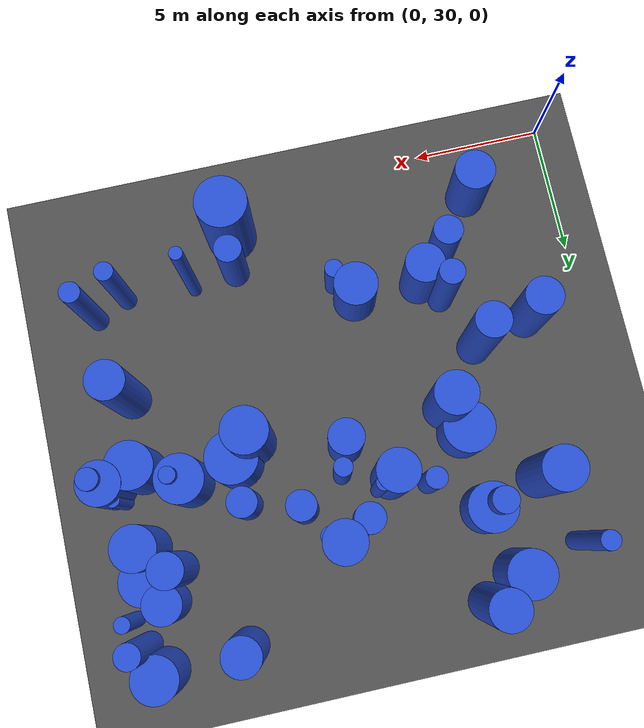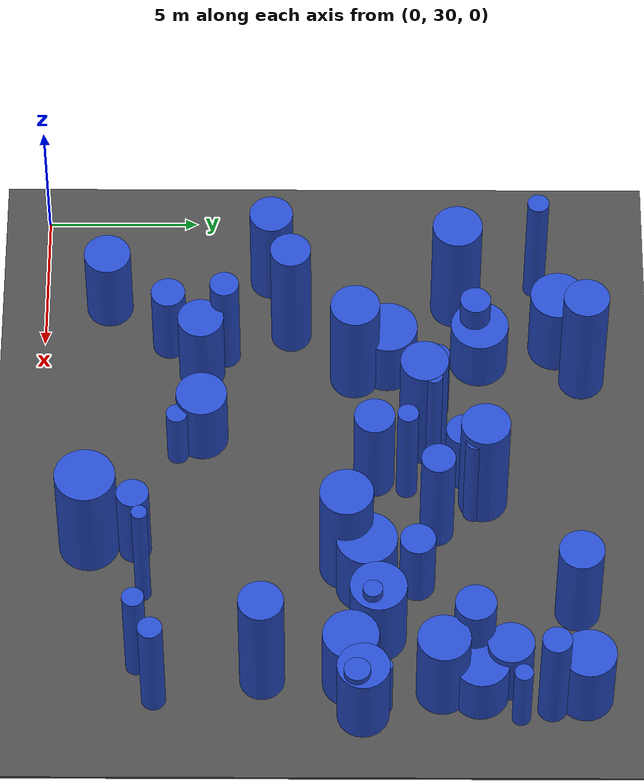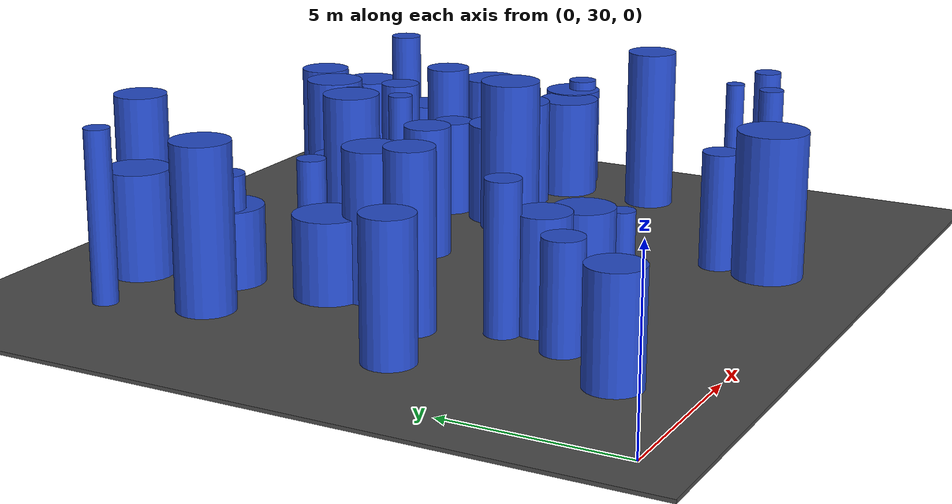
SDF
<sdf version="1.6">
 <world name="default">
  <model name="ground_plane">
   <static>1</static>
   <link name="link">
    <collision name="collision">
     <geometry><plane><normal>0 0 1</normal><size>100 100</size></plane></geometry>
     <surface><friction><ode><mu>100</mu><mu2>50</mu2></ode></friction></surface>
    </collision>
    <visual name="visual">
     <cast_shadows>0</cast_shadows>
     <geometry><plane><normal>0 0 1</normal><size>100 100</size></plane></geometry>
     <material>
      <script><uri>file://media/materials/scripts/gazebo.material</uri><name>Gazebo/Grey</name></script>
     </material>
    </visual>
   </link>
  </model>
  <model name="asphalt_plane">
   <static>1</static>
   <link name="link">
    <collision name="collision"><geometry><box><size>200 200 0.1</size></box></geometry></collision>
    <visual name="visual">
     <cast_shadows>0</cast_shadows>
     <geometry><box><size>200 200 0.1</size></box></geometry>
     <material>
      <script>
       <uri>model://asphalt_plane/materials/scripts</uri>
       <uri>model://asphalt_plane/materials/textures</uri>
       <name>vrc/asphalt</name>
      </script>
     </material>
    </visual>
   </link>
  </model>
  <model name="1">
   <static>0</static>
   <link name="link">
    <inertial>
     <mass>2</mass>
     <inertia><ixx>1.7057</ixx><ixy>0</ixy><ixz>0</ixz><iyy>1.7057</iyy><iyz>0</iyz><izz>0.32089</izz></inertia>
    </inertial>
    <collision name="collision">
     <geometry><cylinder><length>3.04492</length><radius>0.566472</radius></cylinder></geometry>
     <surface><contact><collide_without_contact>1</collide_without_contact></contact></surface>
    </collision>
    <visual name="visual">
     <geometry><cylinder><length>3.04492</length><radius>0.566472</radius></cylinder></geometry>
     <material>
      <script><uri>file://media/materials/scripts/gazebo.material</uri><name>Gazebo/Blue</name></script>
     </material>
    </visual>
    <gravity>0</gravity>
   </link>
   <pose>5.05368 34.1911 1.52246 0 -0 0</pose>
  </model>
  <model name="2">
   <static>0</static>
   <link name="link">
    <inertial>
     <mass>2</mass>
     <inertia><ixx>2.62741</ixx><ixy>0</ixy><ixz>0</ixz><iyy>2.62741</iyy><iyz>0</iyz><izz>0.536153</izz></inertia>
    </inertial>
    <collision name="collision">
     <geometry><cylinder><length>3.76245</length><radius>0.732225</radius></cylinder></geometry>
     <surface><contact><collide_without_contact>1</collide_without_contact></contact></surface>
    </collision>
    <visual name="visual">
     <geometry><cylinder><length>3.76245</length><radius>0.732225</radius></cylinder></geometry>
     <material>
      <script><uri>file://media/materials/scripts/gazebo.material</uri><name>Gazebo/Blue</name></script>
     </material>
    </visual>
    <gravity>0</gravity>
   </link>
   <pose>15.603 47.5677 1.88122 0 -0 0</pose>
  </model>
  <model name="3">
   <static>0</static>
   <link name="link">
    <inertial>
     <mass>2</mass>
     <inertia>
      <ixx>1.36545</ixx>
      <ixy>0</ixy>
      <ixz>0</ixz>
      <iyy>1.36545</iyy>
      <iyz>0</iyz>
      <izz>0.0913502</izz>
     </inertia>
    </inertial>
    <collision name="collision">
     <geometry><cylinder><length>2.81401</length><radius>0.302242</radius></cylinder></geometry>
     <surface><contact><collide_without_contact>1</collide_without_contact></contact></surface>
    </collision>
    <visual name="visual">
     <geometry><cylinder><length>2.81401</length><radius>0.302242</radius></cylinder></geometry>
     <material>
      <script><uri>file://media/materials/scripts/gazebo.material</uri><name>Gazebo/Blue</name></script>
     </material>
    </visual>
    <gravity>0</gravity>
   </link>
   <pose>19.5801 45.6834 1.40701 0 -0 0</pose>
  </model>
  <model name="4">
   <static>0</static>
   <link name="link">
    <inertial>
     <mass>2</mass>
     <inertia><ixx>1.95961</ixx><ixy>0</ixy><ixz>0</ixz><iyy>1.95961</iyy><iyz>0</iyz><izz>0.982624</izz></inertia>
    </inertial>
    <collision name="collision">
     <geometry><cylinder><length>2.96813</length><radius>0.991274</radius></cylinder></geometry>
     <surface><contact><collide_without_contact>1</collide_without_contact></contact></surface>
    </collision>
    <visual name="visual">
     <geometry><cylinder><length>2.96813</length><radius>0.991274</radius></cylinder></geometry>
     <material>
      <script><uri>file://media/materials/scripts/gazebo.material</uri><name>Gazebo/Blue</name></script>
     </material>
    </visual>
    <gravity>0</gravity>
   </link>
   <pose>14.6645 40.756 1.48407 0 -0 0</pose>
  </model>
  <model name="5">
   <static>0</static>
   <link name="link">
    <inertial>
     <mass>2</mass>
     <inertia><ixx>2.61652</ixx><ixy>0</ixy><ixz>0</ixz><iyy>2.61652</iyy><iyz>0</iyz><izz>0.44531</izz></inertia>
    </inertial>
    <collision name="collision">
     <geometry><cylinder><length>3.78988</length><radius>0.667315</radius></cylinder></geometry>
     <surface><contact><collide_without_contact>1</collide_without_contact></contact></surface>
    </collision>
    <visual name="visual">
     <geometry><cylinder><length>3.78988</length><radius>0.667315</radius></cylinder></geometry>
     <material>
      <script><uri>file://media/materials/scripts/gazebo.material</uri><name>Gazebo/Blue</name></script>
     </material>
    </visual>
    <gravity>0</gravity>
   </link>
   <pose>10.4927 41.0038 1.89494 0 -0 0</pose>
  </model>
  <model name="6">
   <static>0</static>
   <link name="link">
    <inertial>
     <mass>2</mass>
     <inertia><ixx>2.11932</ixx><ixy>0</ixy><ixz>0</ixz><iyy>2.11932</iyy><iyz>0</iyz><izz>0.84148</izz></inertia>
    </inertial>
    <collision name="collision">
     <geometry><cylinder><length>3.19241</length><radius>0.917322</radius></cylinder></geometry>
     <surface><contact><collide_without_contact>1</collide_without_contact></contact></surface>
    </collision>
    <visual name="visual">
     <geometry><cylinder><length>3.19241</length><radius>0.917322</radius></cylinder></geometry>
     <material>
      <script><uri>file://media/materials/scripts/gazebo.material</uri><name>Gazebo/Blue</name></script>
     </material>
    </visual>
    <gravity>0</gravity>
   </link>
   <pose>16.6156 41.1221 1.5962 0 -0 0</pose>
  </model>
  <model name="8">
   <static>0</static>
   <link name="link">
    <inertial>
     <mass>2</mass>
     <inertia><ixx>3.79155</ixx><ixy>0</ixy><ixz>0</ixz><iyy>3.79155</iyy><iyz>0</iyz><izz>0.640544</izz></inertia>
    </inertial>
    <collision name="collision">
     <geometry><cylinder><length>4.56373</length><radius>0.80034</radius></cylinder></geometry>
     <surface><contact><collide_without_contact>1</collide_without_contact></contact></surface>
    </collision>
    <visual name="visual">
     <geometry><cylinder><length>4.56373</length><radius>0.80034</radius></cylinder></geometry>
     <material>
      <script><uri>file://media/materials/scripts/gazebo.material</uri><name>Gazebo/Blue</name></script>
     </material>
    </visual>
    <gravity>0</gravity>
   </link>
   <pose>11.3326 44.5695 2.28187 0 -0 0</pose>
  </model>
  <model name="25">
   <static>0</static>
   <link name="link">
    <inertial>
     <mass>2</mass>
     <inertia><ixx>1.19215</ixx><ixy>0</ixy><ixz>0</ixz><iyy>1.19215</iyy><iyz>0</iyz><izz>0.566845</izz></inertia>
    </inertial>
    <collision name="collision">
     <geometry><cylinder><length>2.33503</length><radius>0.752891</radius></cylinder></geometry>
     <surface><contact><collide_without_contact>1</collide_without_contact></contact></surface>
    </collision>
    <visual name="visual">
     <geometry><cylinder><length>2.33503</length><radius>0.752891</radius></cylinder></geometry>
     <material>
      <script><uri>file://media/materials/scripts/gazebo.material</uri><name>Gazebo/Blue</name></script>
     </material>
    </visual>
    <gravity>0</gravity>
   </link>
   <pose>18.1857 45.3246 1.16752 0 -0 0</pose>
  </model>
  <model name="26">
   <static>0</static>
   <link name="link">
    <inertial>
     <mass>2</mass>
     <inertia><ixx>1.12247</ixx><ixy>0</ixy><ixz>0</ixz><iyy>1.12247</iyy><iyz>0</iyz><izz>0.817696</izz></inertia>
    </inertial>
    <collision name="collision">
     <geometry><cylinder><length>2.06923</length><radius>0.904265</radius></cylinder></geometry>
     <surface><contact><collide_without_contact>1</collide_without_contact></contact></surface>
    </collision>
    <visual name="visual">
     <geometry><cylinder><length>2.06923</length><radius>0.904265</radius></cylinder></geometry>
     <material>
      <script><uri>file://media/materials/scripts/gazebo.material</uri><name>Gazebo/Blue</name></script>
     </material>
    </visual>
    <gravity>0</gravity>
   </link>
   <pose>18.7542 44.3924 1.03462 0 -0 0</pose>
  </model>
  <model name="27">
   <static>0</static>
   <link name="link">
    <inertial>
     <mass>2</mass>
     <inertia><ixx>2.96729</ixx><ixy>0</ixy><ixz>0</ixz><iyy>2.96729</iyy><iyz>0</iyz><izz>0.127909</izz></inertia>
    </inertial>
    <collision name="collision">
     <geometry><cylinder><length>4.17373</length><radius>0.357643</radius></cylinder></geometry>
     <surface><contact><collide_without_contact>1</collide_without_contact></contact></surface>
    </collision>
    <visual name="visual">
     <geometry><cylinder><length>4.17373</length><radius>0.357643</radius></cylinder></geometry>
     <material>
      <script><uri>file://media/materials/scripts/gazebo.material</uri><name>Gazebo/Blue</name></script>
     </material>
    </visual>
    <gravity>0</gravity>
   </link>
   <pose>17.6873 33.3868 2.08686 0 -0 0</pose>
  </model>
  <model name="38">
   <static>0</static>
   <link name="link">
    <inertial>
     <mass>2</mass>
     <inertia><ixx>4.19414</ixx><ixy>0</ixy><ixz>0</ixz><iyy>4.19414</iyy><iyz>0</iyz><izz>0.44377</izz></inertia>
    </inertial>
    <collision name="collision">
     <geometry><cylinder><length>4.88196</length><radius>0.66616</radius></cylinder></geometry>
     <surface><contact><collide_without_contact>1</collide_without_contact></contact></surface>
    </collision>
    <visual name="visual">
     <geometry><cylinder><length>4.88196</length><radius>0.66616</radius></cylinder></geometry>
     <material>
      <script><uri>file://media/materials/scripts/gazebo.material</uri><name>Gazebo/Blue</name></script>
     </material>
    </visual>
    <gravity>0</gravity>
   </link>
   <pose>4.65444 38.2486 2.44098 0 -0 0</pose>
  </model>
  <model name="48">
   <static>0</static>
   <link name="link">
    <inertial>
     <mass>2</mass>
     <inertia><ixx>1.82802</ixx><ixy>0</ixy><ixz>0</ixz><iyy>1.82802</iyy><iyz>0</iyz><izz>0.254102</izz></inertia>
    </inertial>
    <collision name="collision">
     <geometry><cylinder><length>3.19465</length><radius>0.504085</radius></cylinder></geometry>
     <surface><contact><collide_without_contact>1</collide_without_contact></contact></surface>
    </collision>
    <visual name="visual">
     <geometry><cylinder><length>3.19465</length><radius>0.504085</radius></cylinder></geometry>
     <material>
      <script><uri>file://media/materials/scripts/gazebo.material</uri><name>Gazebo/Blue</name></script>
     </material>
    </visual>
    <gravity>0</gravity>
   </link>
   <pose>5.44202 44.3514 1.59733 0 -0 0</pose>
  </model>
  <model name="50">
   <static>0</static>
   <link name="link">
    <inertial>
     <mass>2</mass>
     <inertia><ixx>3.72286</ixx><ixy>0</ixy><ixz>0</ixz><iyy>3.72286</iyy><iyz>0</iyz><izz>0.752278</izz></inertia>
    </inertial>
    <collision name="collision">
     <geometry><cylinder><length>4.4811</length><radius>0.86734</radius></cylinder></geometry>
     <surface><contact><collide_without_contact>1</collide_without_contact></contact></surface>
    </collision>
    <visual name="visual">
     <geometry><cylinder><length>4.4811</length><radius>0.86734</radius></cylinder></geometry>
     <material>
      <script><uri>file://media/materials/scripts/gazebo.material</uri><name>Gazebo/Blue</name></script>
     </material>
    </visual>
    <gravity>0</gravity>
   </link>
   <pose>13.9115 40.0974 2.24055 0 -0 0</pose>
  </model>
  <model name="61">
   <static>0</static>
   <link name="link">
    <inertial>
     <mass>2</mass>
     <inertia>
      <ixx>4.01912</ixx>
      <ixy>0</ixy>
      <ixz>0</ixz>
      <iyy>4.01912</iyy>
      <iyz>0</iyz>
      <izz>0.0645632</izz>
     </inertia>
    </inertial>
    <collision name="collision">
     <geometry><cylinder><length>4.89091</length><radius>0.254093</radius></cylinder></geometry>
     <surface><contact><collide_without_contact>1</collide_without_contact></contact></surface>
    </collision>
    <visual name="visual">
     <geometry><cylinder><length>4.89091</length><radius>0.254093</radius></cylinder></geometry>
     <material>
      <script><uri>file://media/materials/scripts/gazebo.material</uri><name>Gazebo/Blue</name></script>
     </material>
    </visual>
    <gravity>0</gravity>
   </link>
   <pose>14.9692 33.5353 2.44546 0 -0 0</pose>
  </model>
  <model name="63">
   <static>0</static>
   <link name="link">
    <inertial>
     <mass>2</mass>
     <inertia><ixx>1.90981</ixx><ixy>0</ixy><ixz>0</ixz><iyy>1.90981</iyy><iyz>0</iyz><izz>0.596313</izz></inertia>
    </inertial>
    <collision name="collision">
     <geometry><cylinder><length>3.10965</length><radius>0.772213</radius></cylinder></geometry>
     <surface><contact><collide_without_contact>1</collide_without_contact></contact></surface>
    </collision>
    <visual name="visual">
     <geometry><cylinder><length>3.10965</length><radius>0.772213</radius></cylinder></geometry>
     <material>
      <script><uri>file://media/materials/scripts/gazebo.material</uri><name>Gazebo/Blue</name></script>
     </material>
    </visual>
    <gravity>0</gravity>
   </link>
   <pose>3.52675 32.1403 1.55483 0 -0 0</pose>
  </model>
  <model name="75">
   <static>0</static>
   <link name="link">
    <inertial>
     <mass>2</mass>
     <inertia><ixx>2.73538</ixx><ixy>0</ixy><ixz>0</ixz><iyy>2.73538</iyy><iyz>0</iyz><izz>0.514926</izz></inertia>
    </inertial>
    <collision name="collision">
     <geometry><cylinder><length>3.85584</length><radius>0.717584</radius></cylinder></geometry>
     <surface><contact><collide_without_contact>1</collide_without_contact></contact></surface>
    </collision>
    <visual name="visual">
     <geometry><cylinder><length>3.85584</length><radius>0.717584</radius></cylinder></geometry>
     <material>
      <script><uri>file://media/materials/scripts/gazebo.material</uri><name>Gazebo/Blue</name></script>
     </material>
    </visual>
    <gravity>0</gravity>
   </link>
   <pose>2.41334 37.5859 1.92792 0 -0 0</pose>
  </model>
  <model name="90">
   <static>0</static>
   <link name="link">
    <inertial>
     <mass>2</mass>
     <inertia><ixx>3.38084</ixx><ixy>0</ixy><ixz>0</ixz><iyy>3.38084</iyy><iyz>0</iyz><izz>0.117593</izz></inertia>
    </inertial>
    <collision name="collision">
     <geometry><cylinder><length>4.46456</length><radius>0.342918</radius></cylinder></geometry>
     <surface><contact><collide_without_contact>1</collide_without_contact></contact></surface>
    </collision>
    <visual name="visual">
     <geometry><cylinder><length>4.46456</length><radius>0.342918</radius></cylinder></geometry>
     <material>
      <script><uri>file://media/materials/scripts/gazebo.material</uri><name>Gazebo/Blue</name></script>
     </material>
    </visual>
    <gravity>0</gravity>
   </link>
   <pose>10.8516 42.0753 2.23228 0 -0 0</pose>
  </model>
  <model name="93">
   <static>0</static>
   <link name="link">
    <inertial>
     <mass>2</mass>
     <inertia><ixx>2.00699</ixx><ixy>0</ixy><ixz>0</ixz><iyy>2.00699</iyy><iyz>0</iyz><izz>0.571679</izz></inertia>
    </inertial>
    <collision name="collision">
     <geometry><cylinder><length>3.21355</length><radius>0.756095</radius></cylinder></geometry>
     <surface><contact><collide_without_contact>1</collide_without_contact></contact></surface>
    </collision>
    <visual name="visual">
     <geometry><cylinder><length>3.21355</length><radius>0.756095</radius></cylinder></geometry>
     <material>
      <script><uri>file://media/materials/scripts/gazebo.material</uri><name>Gazebo/Blue</name></script>
     </material>
    </visual>
    <gravity>0</gravity>
   </link>
   <pose>6.21176 35.2915 1.60678 0 -0 0</pose>
  </model>
  <model name="99">
   <static>0</static>
   <link name="link">
    <inertial>
     <mass>2</mass>
     <inertia><ixx>3.91172</ixx><ixy>0</ixy><ixz>0</ixz><iyy>3.91172</iyy><iyz>0</iyz><izz>0.672515</izz></inertia>
    </inertial>
    <collision name="collision">
     <geometry><cylinder><length>4.63171</length><radius>0.82007</radius></cylinder></geometry>
     <surface><contact><collide_without_contact>1</collide_without_contact></contact></surface>
    </collision>
    <visual name="visual">
     <geometry><cylinder><length>4.63171</length><radius>0.82007</radius></cylinder></geometry>
     <material>
      <script><uri>file://media/materials/scripts/gazebo.material</uri><name>Gazebo/Blue</name></script>
     </material>
    </visual>
    <gravity>0</gravity>
   </link>
   <pose>3.48026 43.7493 2.31586 0 -0 0</pose>
  </model>
  <model name="104">
   <static>0</static>
   <link name="link">
    <inertial>
     <mass>2</mass>
     <inertia><ixx>1.92082</ixx><ixy>0</ixy><ixz>0</ixz><iyy>1.92082</iyy><iyz>0</iyz><izz>0.825903</izz></inertia>
    </inertial>
    <collision name="collision">
     <geometry><cylinder><length>3.00786</length><radius>0.908792</radius></cylinder></geometry>
     <surface><contact><collide_without_contact>1</collide_without_contact></contact></surface>
    </collision>
    <visual name="visual">
     <geometry><cylinder><length>3.00786</length><radius>0.908792</radius></cylinder></geometry>
     <material>
      <script><uri>file://media/materials/scripts/gazebo.material</uri><name>Gazebo/Blue</name></script>
     </material>
    </visual>
    <gravity>0</gravity>
   </link>
   <pose>18.3119 40.2452 1.50393 0 -0 0</pose>
  </model>
  <model name="108">
   <static>0</static>
   <link name="link">
    <inertial>
     <mass>2</mass>
     <inertia><ixx>1.39367</ixx><ixy>0</ixy><ixz>0</ixz><iyy>1.39367</iyy><iyz>0</iyz><izz>0.956084</izz></inertia>
    </inertial>
    <collision name="collision">
     <geometry><cylinder><length>2.34388</length><radius>0.977795</radius></cylinder></geometry>
     <surface><contact><collide_without_contact>1</collide_without_contact></contact></surface>
    </collision>
    <visual name="visual">
     <geometry><cylinder><length>2.34388</length><radius>0.977795</radius></cylinder></geometry>
     <material>
      <script><uri>file://media/materials/scripts/gazebo.material</uri><name>Gazebo/Blue</name></script>
     </material>
    </visual>
    <gravity>0</gravity>
   </link>
   <pose>5.9367 41.4672 1.17194 0 -0 0</pose>
  </model>
  <model name="114">
   <static>0</static>
   <link name="link">
    <inertial>
     <mass>2</mass>
     <inertia><ixx>1.52905</ixx><ixy>0</ixy><ixz>0</ixz><iyy>1.52905</iyy><iyz>0</iyz><izz>0.330127</izz></inertia>
    </inertial>
    <collision name="collision">
     <geometry><cylinder><length>2.86076</length><radius>0.574567</radius></cylinder></geometry>
     <surface><contact><collide_without_contact>1</collide_without_contact></contact></surface>
    </collision>
    <visual name="visual">
     <geometry><cylinder><length>2.86076</length><radius>0.574567</radius></cylinder></geometry>
     <material>
      <script><uri>file://media/materials/scripts/gazebo.material</uri><name>Gazebo/Blue</name></script>
     </material>
    </visual>
    <gravity>0</gravity>
   </link>
   <pose>14.6221 42.3954 1.43038 0 -0 0</pose>
  </model>
  <model name="115">
   <static>0</static>
   <link name="link">
    <inertial>
     <mass>2</mass>
     <inertia><ixx>1.65039</ixx><ixy>0</ixy><ixz>0</ixz><iyy>1.65039</iyy><iyz>0</iyz><izz>0.773236</izz></inertia>
    </inertial>
    <collision name="collision">
     <geometry><cylinder><length>2.75365</length><radius>0.879338</radius></cylinder></geometry>
     <surface><contact><collide_without_contact>1</collide_without_contact></contact></surface>
    </collision>
    <visual name="visual">
     <geometry><cylinder><length>2.75365</length><radius>0.879338</radius></cylinder></geometry>
     <material>
      <script><uri>file://media/materials/scripts/gazebo.material</uri><name>Gazebo/Blue</name></script>
     </material>
    </visual>
    <gravity>0</gravity>
   </link>
   <pose>18.8288 47.7637 1.37683 0 -0 0</pose>
  </model>
  <model name="117">
   <static>0</static>
   <link name="link">
    <inertial>
     <mass>2</mass>
     <inertia><ixx>3.9347</ixx><ixy>0</ixy><ixz>0</ixz><iyy>3.9347</iyy><iyz>0</iyz><izz>0.126221</izz></inertia>
    </inertial>
    <collision name="collision">
     <geometry><cylinder><length>4.8197</length><radius>0.355276</radius></cylinder></geometry>
     <surface><contact><collide_without_contact>1</collide_without_contact></contact></surface>
    </collision>
    <visual name="visual">
     <geometry><cylinder><length>4.8197</length><radius>0.355276</radius></cylinder></geometry>
     <material>
      <script><uri>file://media/materials/scripts/gazebo.material</uri><name>Gazebo/Blue</name></script>
     </material>
    </visual>
    <gravity>0</gravity>
   </link>
   <pose>2.66707 46.4198 2.40985 0 -0 0</pose>
  </model>
  <model name="118">
   <static>0</static>
   <link name="link">
    <inertial>
     <mass>2</mass>
     <inertia><ixx>4.07264</ixx><ixy>0</ixy><ixz>0</ixz><iyy>4.07264</iyy><iyz>0</iyz><izz>0.562164</izz></inertia>
    </inertial>
    <collision name="collision">
     <geometry><cylinder><length>4.76963</length><radius>0.749776</radius></cylinder></geometry>
     <surface><contact><collide_without_contact>1</collide_without_contact></contact></surface>
    </collision>
    <visual name="visual">
     <geometry><cylinder><length>4.76963</length><radius>0.749776</radius></cylinder></geometry>
     <material>
      <script><uri>file://media/materials/scripts/gazebo.material</uri><name>Gazebo/Blue</name></script>
     </material>
    </visual>
    <gravity>0</gravity>
   </link>
   <pose>6.48071 47.9206 2.38481 0 -0 0</pose>
  </model>
  <model name="123">
   <static>0</static>
   <link name="link">
    <inertial>
     <mass>2</mass>
     <inertia>
      <ixx>2.14543</ixx>
      <ixy>0</ixy>
      <ixz>0</ixz>
      <iyy>2.14543</iyy>
      <iyz>0</iyz>
      <izz>0.0998693</izz>
     </inertia>
    </inertial>
    <collision name="collision">
     <geometry><cylinder><length>3.54584</length><radius>0.316021</radius></cylinder></geometry>
     <surface><contact><collide_without_contact>1</collide_without_contact></contact></surface>
    </collision>
    <visual name="visual">
     <geometry><cylinder><length>3.54584</length><radius>0.316021</radius></cylinder></geometry>
     <material>
      <script><uri>file://media/materials/scripts/gazebo.material</uri><name>Gazebo/Blue</name></script>
     </material>
    </visual>
    <gravity>0</gravity>
   </link>
   <pose>16.9404 40.9377 1.77292 0 -0 0</pose>
  </model>
  <model name="125">
   <static>0</static>
   <link name="link">
    <inertial>
     <mass>2</mass>
     <inertia><ixx>2.1948</ixx><ixy>0</ixy><ixz>0</ixz><iyy>2.1948</iyy><iyz>0</iyz><izz>0.726981</izz></inertia>
    </inertial>
    <collision name="collision">
     <geometry><cylinder><length>3.31479</length><radius>0.852632</radius></cylinder></geometry>
     <surface><contact><collide_without_contact>1</collide_without_contact></contact></surface>
    </collision>
    <visual name="visual">
     <geometry><cylinder><length>3.31479</length><radius>0.852632</radius></cylinder></geometry>
     <material>
      <script><uri>file://media/materials/scripts/gazebo.material</uri><name>Gazebo/Blue</name></script>
     </material>
    </visual>
    <gravity>0</gravity>
   </link>
   <pose>18.6277 43.1827 1.65739 0 -0 0</pose>
  </model>
  <model name="129">
   <static>0</static>
   <link name="link">
    <inertial>
     <mass>2</mass>
     <inertia>
      <ixx>3.89529</ixx>
      <ixy>0</ixy>
      <ixz>0</ixz>
      <iyy>3.89529</iyy>
      <iyz>0</iyz>
      <izz>0.0825572</izz>
     </inertia>
    </inertial>
    <collision name="collision">
     <geometry><cylinder><length>4.80875</length><radius>0.287328</radius></cylinder></geometry>
     <surface><contact><collide_without_contact>1</collide_without_contact></contact></surface>
    </collision>
    <visual name="visual">
     <geometry><cylinder><length>4.80875</length><radius>0.287328</radius></cylinder></geometry>
     <material>
      <script><uri>file://media/materials/scripts/gazebo.material</uri><name>Gazebo/Blue</name></script>
     </material>
    </visual>
    <gravity>0</gravity>
   </link>
   <pose>9.62037 42.9112 2.40438 0 -0 0</pose>
  </model>
  <model name="130">
   <static>0</static>
   <link name="link">
    <inertial>
     <mass>2</mass>
     <inertia><ixx>3.39599</ixx><ixy>0</ixy><ixz>0</ixz><iyy>3.39599</iyy><iyz>0</iyz><izz>0.973982</izz></inertia>
    </inertial>
    <collision name="collision">
     <geometry><cylinder><length>4.1778</length><radius>0.986905</radius></cylinder></geometry>
     <surface><contact><collide_without_contact>1</collide_without_contact></contact></surface>
    </collision>
    <visual name="visual">
     <geometry><cylinder><length>4.1778</length><radius>0.986905</radius></cylinder></geometry>
     <material>
      <script><uri>file://media/materials/scripts/gazebo.material</uri><name>Gazebo/Blue</name></script>
     </material>
    </visual>
    <gravity>0</gravity>
   </link>
   <pose>13.0958 31.7293 2.0889 0 -0 0</pose>
  </model>
  <model name="132">
   <static>0</static>
   <link name="link">
    <inertial>
     <mass>2</mass>
     <inertia><ixx>3.33853</ixx><ixy>0</ixy><ixz>0</ixz><iyy>3.33853</iyy><iyz>0</iyz><izz>0.305697</izz></inertia>
    </inertial>
    <collision name="collision">
     <geometry><cylinder><length>4.37196</length><radius>0.552899</radius></cylinder></geometry>
     <surface><contact><collide_without_contact>1</collide_without_contact></contact></surface>
    </collision>
    <visual name="visual">
     <geometry><cylinder><length>4.37196</length><radius>0.552899</radius></cylinder></geometry>
     <material>
      <script><uri>file://media/materials/scripts/gazebo.material</uri><name>Gazebo/Blue</name></script>
     </material>
    </visual>
    <gravity>0</gravity>
   </link>
   <pose>12.5302 43.0419 2.18598 0 -0 0</pose>
  </model>
  <model name="136">
   <static>0</static>
   <link name="link">
    <inertial>
     <mass>2</mass>
     <inertia><ixx>1.51332</ixx><ixy>0</ixy><ixz>0</ixz><iyy>1.51332</iyy><iyz>0</iyz><izz>0.707687</izz></inertia>
    </inertial>
    <collision name="collision">
     <geometry><cylinder><length>2.63759</length><radius>0.841241</radius></cylinder></geometry>
     <surface><contact><collide_without_contact>1</collide_without_contact></contact></surface>
    </collision>
    <visual name="visual">
     <geometry><cylinder><length>2.63759</length><radius>0.841241</radius></cylinder></geometry>
     <material>
      <script><uri>file://media/materials/scripts/gazebo.material</uri><name>Gazebo/Blue</name></script>
     </material>
    </visual>
    <gravity>0</gravity>
   </link>
   <pose>8.84388 35.3527 1.31879 0 -0 0</pose>
  </model>
  <model name="139">
   <static>0</static>
   <link name="link">
    <inertial>
     <mass>2</mass>
     <inertia><ixx>2.02174</ixx><ixy>0</ixy><ixz>0</ixz><iyy>2.02174</iyy><iyz>0</iyz><izz>0.279239</izz></inertia>
    </inertial>
    <collision name="collision">
     <geometry><cylinder><length>3.36046</length><radius>0.528431</radius></cylinder></geometry>
     <surface><contact><collide_without_contact>1</collide_without_contact></contact></surface>
    </collision>
    <visual name="visual">
     <geometry><cylinder><length>3.36046</length><radius>0.528431</radius></cylinder></geometry>
     <material>
      <script><uri>file://media/materials/scripts/gazebo.material</uri><name>Gazebo/Blue</name></script>
     </material>
    </visual>
    <gravity>0</gravity>
   </link>
   <pose>13.2306 33.2333 1.68023 0 -0 0</pose>
  </model>
  <model name="141">
   <static>0</static>
   <link name="link">
    <inertial>
     <mass>2</mass>
     <inertia>
      <ixx>1.62132</ixx>
      <ixy>0</ixy>
      <ixz>0</ixz>
      <iyy>1.62132</iyy>
      <iyz>0</iyz>
      <izz>0.0885588</izz>
     </inertia>
    </inertial>
    <collision name="collision">
     <geometry><cylinder><length>3.07608</length><radius>0.297588</radius></cylinder></geometry>
     <surface><contact><collide_without_contact>1</collide_without_contact></contact></surface>
    </collision>
    <visual name="visual">
     <geometry><cylinder><length>3.07608</length><radius>0.297588</radius></cylinder></geometry>
     <material>
      <script><uri>file://media/materials/scripts/gazebo.material</uri><name>Gazebo/Blue</name></script>
     </material>
    </visual>
    <gravity>0</gravity>
   </link>
   <pose>3.8277 32.3476 1.53804 0 -0 0</pose>
  </model>
  <model name="143">
   <static>0</static>
   <link name="link">
    <inertial>
     <mass>2</mass>
     <inertia><ixx>4.18174</ixx><ixy>0</ixy><ixz>0</ixz><iyy>4.18174</iyy><iyz>0</iyz><izz>0.611947</izz></inertia>
    </inertial>
    <collision name="collision">
     <geometry><cylinder><length>4.8223</length><radius>0.78227</radius></cylinder></geometry>
     <surface><contact><collide_without_contact>1</collide_without_contact></contact></surface>
    </collision>
    <visual name="visual">
     <geometry><cylinder><length>4.8223</length><radius>0.78227</radius></cylinder></geometry>
     <material>
      <script><uri>file://media/materials/scripts/gazebo.material</uri><name>Gazebo/Blue</name></script>
     </material>
    </visual>
    <gravity>0</gravity>
   </link>
   <pose>9.05167 42.6127 2.41115 0 -0 0</pose>
  </model>
  <model name="148">
   <static>0</static>
   <link name="link">
    <inertial>
     <mass>2</mass>
     <inertia><ixx>3.28458</ixx><ixy>0</ixy><ixz>0</ixz><iyy>3.28458</iyy><iyz>0</iyz><izz>0.657645</izz></inertia>
    </inertial>
    <collision name="collision">
     <geometry><cylinder><length>4.21124</length><radius>0.810953</radius></cylinder></geometry>
     <surface><contact><collide_without_contact>1</collide_without_contact></contact></surface>
    </collision>
    <visual name="visual">
     <geometry><cylinder><length>4.21124</length><radius>0.810953</radius></cylinder></geometry>
     <material>
      <script><uri>file://media/materials/scripts/gazebo.material</uri><name>Gazebo/Blue</name></script>
     </material>
    </visual>
    <gravity>0</gravity>
   </link>
   <pose>6.40553 40.373 2.10562 0 -0 0</pose>
  </model>
  <model name="157">
   <static>0</static>
   <link name="link">
    <inertial>
     <mass>2</mass>
     <inertia><ixx>2.97609</ixx><ixy>0</ixy><ixz>0</ixz><iyy>2.97609</iyy><iyz>0</iyz><izz>0.230084</izz></inertia>
    </inertial>
    <collision name="collision">
     <geometry><cylinder><length>4.14322</length><radius>0.47967</radius></cylinder></geometry>
     <surface><contact><collide_without_contact>1</collide_without_contact></contact></surface>
    </collision>
    <visual name="visual">
     <geometry><cylinder><length>4.14322</length><radius>0.47967</radius></cylinder></geometry>
     <material>
      <script><uri>file://media/materials/scripts/gazebo.material</uri><name>Gazebo/Blue</name></script>
     </material>
    </visual>
    <gravity>0</gravity>
   </link>
   <pose>5.5037 36.0728 2.07161 0 -0 0</pose>
  </model>
  <model name="161">
   <static>0</static>
   <link name="link">
    <inertial>
     <mass>2</mass>
     <inertia><ixx>3.0886</ixx><ixy>0</ixy><ixz>0</ixz><iyy>3.0886</iyy><iyz>0</iyz><izz>0.117069</izz></inertia>
    </inertial>
    <collision name="collision">
     <geometry><cylinder><length>4.26384</length><radius>0.342154</radius></cylinder></geometry>
     <surface><contact><collide_without_contact>1</collide_without_contact></contact></surface>
    </collision>
    <visual name="visual">
     <geometry><cylinder><length>4.26384</length><radius>0.342154</radius></cylinder></geometry>
     <material>
      <script><uri>file://media/materials/scripts/gazebo.material</uri><name>Gazebo/Blue</name></script>
     </material>
    </visual>
    <gravity>0</gravity>
   </link>
   <pose>11.7784 44.2515 2.13192 0 -0 0</pose>
  </model>
  <model name="163">
   <static>0</static>
   <link name="link">
    <inertial>
     <mass>2</mass>
     <inertia><ixx>1.08186</ixx><ixy>0</ixy><ixz>0</ixz><iyy>1.08186</iyy><iyz>0</iyz><izz>0.122551</izz></inertia>
    </inertial>
    <collision name="collision">
     <geometry><cylinder><length>2.47457</length><radius>0.350073</radius></cylinder></geometry>
     <surface><contact><collide_without_contact>1</collide_without_contact></contact></surface>
    </collision>
    <visual name="visual">
     <geometry><cylinder><length>2.47457</length><radius>0.350073</radius></cylinder></geometry>
     <material>
      <script><uri>file://media/materials/scripts/gazebo.material</uri><name>Gazebo/Blue</name></script>
     </material>
    </visual>
    <gravity>0</gravity>
   </link>
   <pose>9.51663 34.5533 1.23729 0 -0 0</pose>
  </model>
  <model name="164">
   <static>0</static>
   <link name="link">
    <inertial>
     <mass>2</mass>
     <inertia><ixx>1.97533</ixx><ixy>0</ixy><ixz>0</ixz><iyy>1.97533</iyy><iyz>0</iyz><izz>0.825921</izz></inertia>
    </inertial>
    <collision name="collision">
     <geometry><cylinder><length>3.06173</length><radius>0.908802</radius></cylinder></geometry>
     <surface><contact><collide_without_contact>1</collide_without_contact></contact></surface>
    </collision>
    <visual name="visual">
     <geometry><cylinder><length>3.06173</length><radius>0.908802</radius></cylinder></geometry>
     <material>
      <script><uri>file://media/materials/scripts/gazebo.material</uri><name>Gazebo/Blue</name></script>
     </material>
    </visual>
    <gravity>0</gravity>
   </link>
   <pose>5.14258 47.0804 1.53087 0 -0 0</pose>
  </model>
  <model name="168">
   <static>0</static>
   <link name="link">
    <inertial>
     <mass>2</mass>
     <inertia><ixx>2.56804</ixx><ixy>0</ixy><ixz>0</ixz><iyy>2.56804</iyy><iyz>0</iyz><izz>0.441349</izz></inertia>
    </inertial>
    <collision name="collision">
     <geometry><cylinder><length>3.75289</length><radius>0.664341</radius></cylinder></geometry>
     <surface><contact><collide_without_contact>1</collide_without_contact></contact></surface>
    </collision>
    <visual name="visual">
     <geometry><cylinder><length>3.75289</length><radius>0.664341</radius></cylinder></geometry>
     <material>
      <script><uri>file://media/materials/scripts/gazebo.material</uri><name>Gazebo/Blue</name></script>
     </material>
    </visual>
    <gravity>0</gravity>
   </link>
   <pose>17.5899 44.1807 1.87645 0 -0 0</pose>
  </model>
  <model name="172">
   <static>0</static>
   <link name="link">
    <inertial>
     <mass>2</mass>
     <inertia>
      <ixx>1.13704</ixx>
      <ixy>0</ixy>
      <ixz>0</ixz>
      <iyy>1.13704</iyy>
      <iyz>0</iyz>
      <izz>0.0775618</izz>
     </inertia>
    </inertial>
    <collision name="collision">
     <geometry><cylinder><length>2.56701</length><radius>0.278499</radius></cylinder></geometry>
     <surface><contact><collide_without_contact>1</collide_without_contact></contact></surface>
    </collision>
    <visual name="visual">
     <geometry><cylinder><length>2.56701</length><radius>0.278499</radius></cylinder></geometry>
     <material>
      <script><uri>file://media/materials/scripts/gazebo.material</uri><name>Gazebo/Blue</name></script>
     </material>
    </visual>
    <gravity>0</gravity>
   </link>
   <pose>19.1871 41.2973 1.2835 0 -0 0</pose>
  </model>
  <model name="180">
   <static>0</static>
   <link name="link">
    <inertial>
     <mass>2</mass>
     <inertia>
      <ixx>1.46639</ixx>
      <ixy>0</ixy>
      <ixz>0</ixz>
      <iyy>1.46639</iyy>
      <iyz>0</iyz>
      <izz>0.0758042</izz>
     </inertia>
    </inertial>
    <collision name="collision">
     <geometry><cylinder><length>2.92762</length><radius>0.275326</radius></cylinder></geometry>
     <surface><contact><collide_without_contact>1</collide_without_contact></contact></surface>
    </collision>
    <visual name="visual">
     <geometry><cylinder><length>2.92762</length><radius>0.275326</radius></cylinder></geometry>
     <material>
      <script><uri>file://media/materials/scripts/gazebo.material</uri><name>Gazebo/Blue</name></script>
     </material>
    </visual>
    <gravity>0</gravity>
   </link>
   <pose>5.12463 34.3902 1.46381 0 -0 0</pose>
  </model>
  <model name="185">
   <static>0</static>
   <link name="link">
    <inertial>
     <mass>2</mass>
     <inertia><ixx>1.34783</ixx><ixy>0</ixy><ixz>0</ixz><iyy>1.34783</iyy><iyz>0</iyz><izz>0.348875</izz></inertia>
    </inertial>
    <collision name="collision">
     <geometry><cylinder><length>2.65336</length><radius>0.590656</radius></cylinder></geometry>
     <surface><contact><collide_without_contact>1</collide_without_contact></contact></surface>
    </collision>
    <visual name="visual">
     <geometry><cylinder><length>2.65336</length><radius>0.590656</radius></cylinder></geometry>
     <material>
      <script><uri>file://media/materials/scripts/gazebo.material</uri><name>Gazebo/Blue</name></script>
     </material>
    </visual>
    <gravity>0</gravity>
   </link>
   <pose>10.2447 43.9313 1.32668 0 -0 0</pose>
  </model>
  <model name="191">
   <static>0</static>
   <link name="link">
    <inertial>
     <mass>2</mass>
     <inertia><ixx>1.26996</ixx><ixy>0</ixy><ixz>0</ixz><iyy>1.26996</iyy><iyz>0</iyz><izz>0.907027</izz></inertia>
    </inertial>
    <collision name="collision">
     <geometry><cylinder><length>2.2133</length><radius>0.952379</radius></cylinder></geometry>
     <surface><contact><collide_without_contact>1</collide_without_contact></contact></surface>
    </collision>
    <visual name="visual">
     <geometry><cylinder><length>2.2133</length><radius>0.952379</radius></cylinder></geometry>
     <material>
      <script><uri>file://media/materials/scripts/gazebo.material</uri><name>Gazebo/Blue</name></script>
     </material>
    </visual>
    <gravity>0</gravity>
   </link>
   <pose>5.76202 44.5077 1.10665 0 -0 0</pose>
  </model>
  <model name="197">
   <static>0</static>
   <link name="link">
    <inertial>
     <mass>2</mass>
     <inertia><ixx>3.29965</ixx><ixy>0</ixy><ixz>0</ixz><iyy>3.29965</iyy><iyz>0</iyz><izz>0.154642</izz></inertia>
    </inertial>
    <collision name="collision">
     <geometry><cylinder><length>4.39704</length><radius>0.393245</radius></cylinder></geometry>
     <surface><contact><collide_without_contact>1</collide_without_contact></contact></surface>
    </collision>
    <visual name="visual">
     <geometry><cylinder><length>4.39704</length><radius>0.393245</radius></cylinder></geometry>
     <material>
      <script><uri>file://media/materials/scripts/gazebo.material</uri><name>Gazebo/Blue</name></script>
     </material>
    </visual>
    <gravity>0</gravity>
   </link>
   <pose>18.9599 33.9575 2.19852 0 -0 0</pose>
  </model>
  <model name="201">
   <static>0</static>
   <link name="link">
    <inertial>
     <mass>2</mass>
     <inertia><ixx>1.82934</ixx><ixy>0</ixy><ixz>0</ixz><iyy>1.82934</iyy><iyz>0</iyz><izz>0.168107</izz></inertia>
    </inertial>
    <collision name="collision">
     <geometry><cylinder><length>3.236</length><radius>0.410008</radius></cylinder></geometry>
     <surface><contact><collide_without_contact>1</collide_without_contact></contact></surface>
    </collision>
    <visual name="visual">
     <geometry><cylinder><length>3.236</length><radius>0.410008</radius></cylinder></geometry>
     <material>
      <script><uri>file://media/materials/scripts/gazebo.material</uri><name>Gazebo/Blue</name></script>
     </material>
    </visual>
    <gravity>0</gravity>
   </link>
   <pose>7.65902 43.0719 1.618 0 -0 0</pose>
  </model>
  <model name="208">
   <static>0</static>
   <link name="link">
    <inertial>
     <mass>2</mass>
     <inertia><ixx>4.14013</ixx><ixy>0</ixy><ixz>0</ixz><iyy>4.14013</iyy><iyz>0</iyz><izz>0.529573</izz></inertia>
    </inertial>
    <collision name="collision">
     <geometry><cylinder><length>4.82204</length><radius>0.727718</radius></cylinder></geometry>
     <surface><contact><collide_without_contact>1</collide_without_contact></contact></surface>
    </collision>
    <visual name="visual">
     <geometry><cylinder><length>4.82204</length><radius>0.727718</radius></cylinder></geometry>
     <material>
      <script><uri>file://media/materials/scripts/gazebo.material</uri><name>Gazebo/Blue</name></script>
     </material>
    </visual>
    <gravity>0</gravity>
   </link>
   <pose>18.2233 37.4165 2.41102 0 -0 0</pose>
  </model>
  <model name="211">
   <static>0</static>
   <link name="link">
    <inertial>
     <mass>2</mass>
     <inertia><ixx>3.11453</ixx><ixy>0</ixy><ixz>0</ixz><iyy>3.11453</iyy><iyz>0</iyz><izz>0.22593</izz></inertia>
    </inertial>
    <collision name="collision">
     <geometry><cylinder><length>4.24375</length><radius>0.475321</radius></cylinder></geometry>
     <surface><contact><collide_without_contact>1</collide_without_contact></contact></surface>
    </collision>
    <visual name="visual">
     <geometry><cylinder><length>4.24375</length><radius>0.475321</radius></cylinder></geometry>
     <material>
      <script><uri>file://media/materials/scripts/gazebo.material</uri><name>Gazebo/Blue</name></script>
     </material>
    </visual>
    <gravity>0</gravity>
   </link>
   <pose>19.2683 46.6829 2.12187 0 -0 0</pose>
  </model>
  <model name="243">
   <static>0</static>
   <link name="link">
    <inertial>
     <mass>2</mass>
     <inertia><ixx>1.88846</ixx><ixy>0</ixy><ixz>0</ixz><iyy>1.88846</iyy><iyz>0</iyz><izz>0.713158</izz></inertia>
    </inertial>
    <collision name="collision">
     <geometry><cylinder><length>3.03171</length><radius>0.844487</radius></cylinder></geometry>
     <surface><contact><collide_without_contact>1</collide_without_contact></contact></surface>
    </collision>
    <visual name="visual">
     <geometry><cylinder><length>3.03171</length><radius>0.844487</radius></cylinder></geometry>
     <material>
      <script><uri>file://media/materials/scripts/gazebo.material</uri><name>Gazebo/Blue</name></script>
     </material>
    </visual>
    <gravity>0</gravity>
   </link>
   <pose>19.4892 40.6444 1.51586 0 -0 0</pose>
  </model>
  <model name="245">
   <static>0</static>
   <link name="link">
    <inertial>
     <mass>2</mass>
     <inertia><ixx>1.91162</ixx><ixy>0</ixy><ixz>0</ixz><iyy>1.91162</iyy><iyz>0</iyz><izz>0.180351</izz></inertia>
    </inertial>
    <collision name="collision">
     <geometry><cylinder><length>3.30585</length><radius>0.424677</radius></cylinder></geometry>
     <surface><contact><collide_without_contact>1</collide_without_contact></contact></surface>
    </collision>
    <visual name="visual">
     <geometry><cylinder><length>3.30585</length><radius>0.424677</radius></cylinder></geometry>
     <material>
      <script><uri>file://media/materials/scripts/gazebo.material</uri><name>Gazebo/Blue</name></script>
     </material>
    </visual>
    <gravity>0</gravity>
   </link>
   <pose>19.7797 40.4443 1.65293 0 -0 0</pose>
  </model>
 </world>
</sdf>
